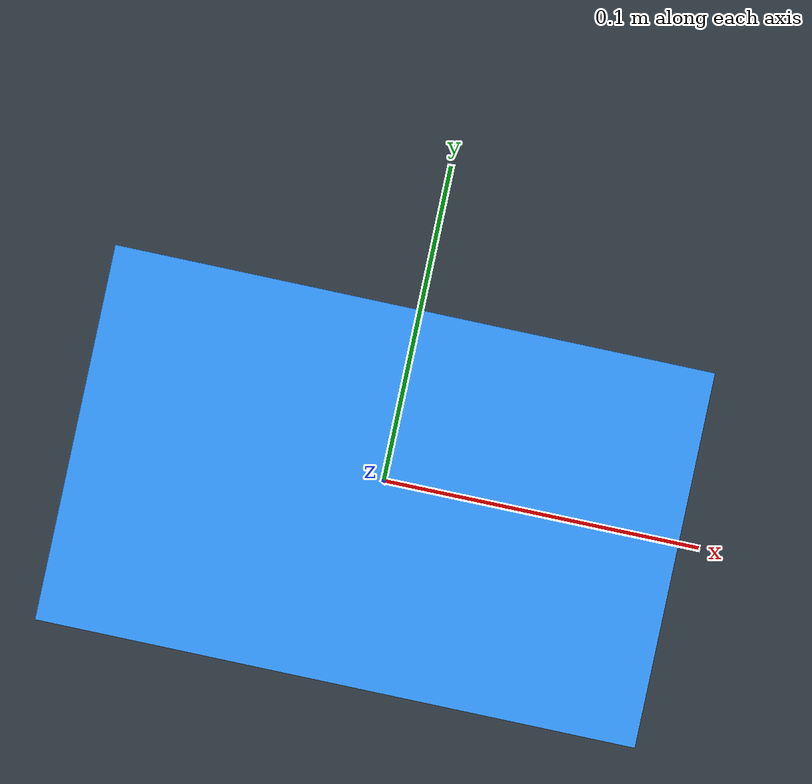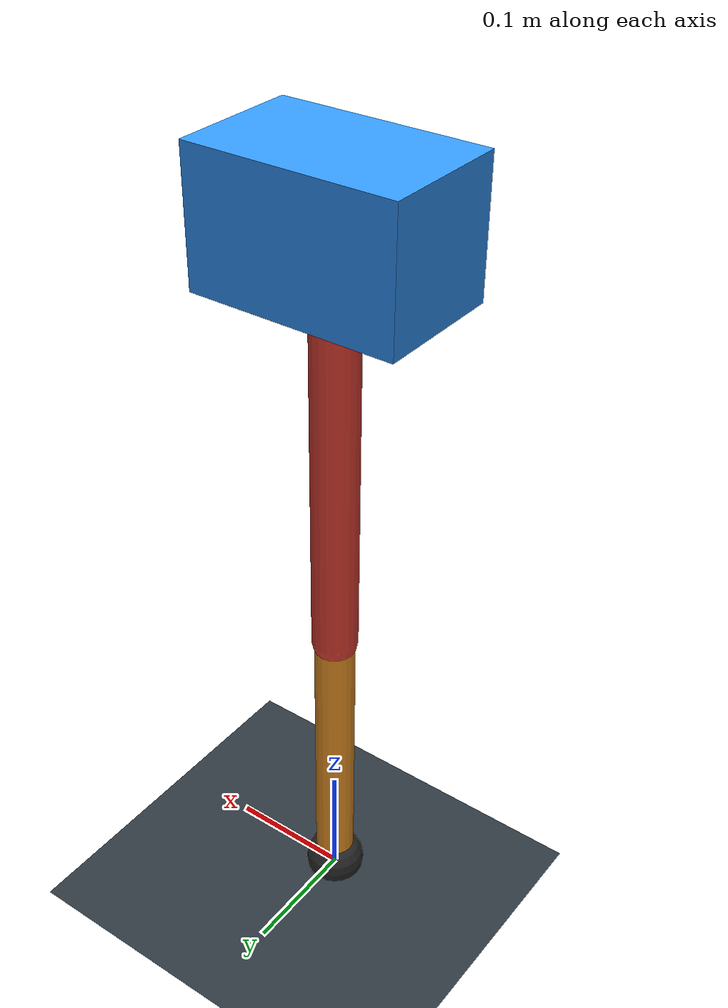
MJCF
<mujoco model="single_axis_two_bar">
  <compiler angle="radian" inertiafromgeom="true"/>
  <option timestep="0.001" integrator="implicitfast" gravity="0 0 -9.81"/>
  <default>
    <joint damping="0.08"/>
    <geom friction="1.2 0.01 0.0001" condim="3"/>
  </default>
  <worldbody>
    <geom name="floor" type="plane" size="5 5 0.1" rgba="0.18 0.22 0.25 1"/>
    <body name="carriage" pos="0 0 0.5933016353001047">
      <joint name="pole_slide" type="slide" axis="0 0 1"/>
      <geom name="payload" type="box" size="0.08 0.05 0.05" mass="2.800262530649359" rgba="0.2 0.6 1 1"/>
      <body name="thigh" pos="0 0 0">
        <joint name="hip" type="hinge" axis="0 1 0"/>
        <geom name="thigh_link" type="capsule" fromto="0 0 0 0 0 -0.3381579528695995" size="0.018" mass="0.24094200978270044" rgba="0.9 0.25 0.2 1"/>
        <body name="shank" pos="0 0 -0.3381579528695995">
          <joint name="knee" type="hinge" axis="0 1 0"/>
          <geom name="shank_link" type="capsule" fromto="0 0 0 0 0 -0.24772002166659085" size="0.016" mass="0.17650378876873163" rgba="0.95 0.6 0.15 1"/>
          <geom name="foot" type="sphere" pos="0 0 -0.24772002166659085" size="0.025" mass="0.03" rgba="0.15 0.15 0.15 1"/>
          <site name="toe" pos="0 0 -0.24772002166659085" size="0.008"/>
        </body>
      </body>
    </body>
  </worldbody>
  <actuator>
    <motor name="hip_motor" joint="hip" ctrlrange="-28.2074291238671 28.2074291238671"/>
    <motor name="knee_motor" joint="knee" ctrlrange="-83.14336064813531 83.14336064813531"/>
  </actuator>
</mujoco>
